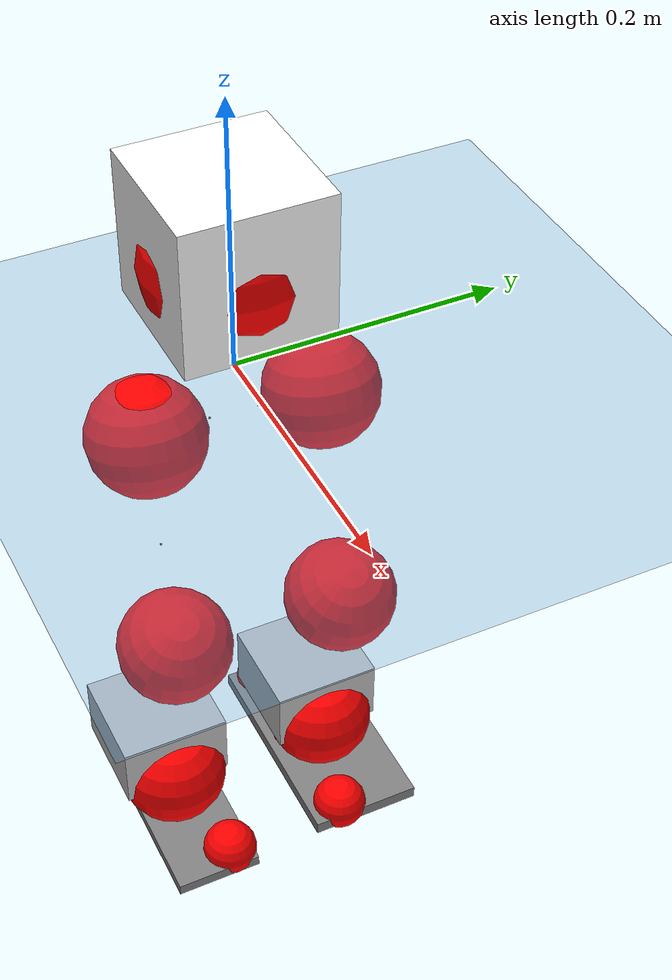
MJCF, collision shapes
<mujoco model="pi_12dof_release_v1">
  <compiler angle="radian" assetdir="assets" balanceinertia="true" inertiafromgeom="false"/>

  <option timestep="0.005" density="1.2" viscosity="2e-05"/>

  <size nkey="1"/>

  <visual>
    <quality shadowsize="8192"/>
    <map shadowclip="0.5"/>
  </visual>

  <default>
    <default class="/">
      <joint armature="0.01" damping="0.01" frictionloss="0.01"/>
      <geom contype="0" conaffinity="0" group="1" solref="-1000 -80"/>
      <site size="0.01 0.005 0.005" group="5"/>
      <general forcelimited="true" biastype="affine" gainprm="20" biasprm="0 -20 -0.5"/>
      <default class="foot">
        <geom size="0.0845 0.036 0.005" type="box" condim="6" group="4" priority="1" friction="0.9 0.2 0.2" solimp="0.015 1 0.005"/>
      </default>
      <default class="reward_collision_sphere">
        <geom group="5" rgba="1 0 0 1"/>
      </default>
    </default>
  </default>

  <asset>
    <texture type="skybox" colorspace="auto" name="//unnamed_texture_0" builtin="gradient" rgb1="0.95 0.95 0.95" rgb2="0.95 0.95 0.95" width="100" height="600"/>
    <texture type="2d" colorspace="auto" name="texplane" builtin="checker" rgb1="0.345 0.575 0.748" rgb2="0.345 0.575 0.748" markrgb="1 1 1" width="512" height="512"/>
    <material name="MatPlane" class="/" texture="texplane" texuniform="true" texrepeat="2 2" specular="0.9"/>
    <mesh name="baselink_1" class="/" file="baselink_1.STL"/>
    <mesh name="r_hip_pitch_link" class="/" file="r_hip_pitch_link.STL"/>
    <mesh name="r_hip_roll_link" class="/" file="r_hip_roll_link.STL"/>
    <mesh name="r_thigh_link" class="/" file="r_thigh_link.STL"/>
    <mesh name="r_calf_link" class="/" file="r_calf_link.STL"/>
    <mesh name="r_ankle_pitch_link" class="/" file="r_ankle_pitch_link.STL"/>
    <mesh name="r_ankle_roll_link" class="/" file="r_ankle_roll_link.STL"/>
    <mesh name="l_hip_pitch_link" class="/" file="l_hip_pitch_link.STL"/>
    <mesh name="l_hip_roll_link" class="/" file="l_hip_roll_link.STL"/>
    <mesh name="l_thigh_link" class="/" file="l_thigh_link.STL"/>
    <mesh name="l_calf_link" class="/" file="l_calf_link.STL"/>
    <mesh name="l_ankle_pitch_link" class="/" file="l_ankle_pitch_link.STL"/>
    <mesh name="l_ankle_roll_link" class="/" file="l_ankle_roll_link.STL"/>
  </asset>

  <worldbody>
    <geom name="floor" class="/" size="100 100 0.125" type="plane" group="0" material="MatPlane"/>
    <light name="toplight_shadow" class="/" pos="0 0 5" dir="0.0990148 0.0990148 -0.990148" type="directional" ambient="0.04 0.04 0.04" diffuse="0.55 0.55 0.55" specular="0.12 0.12 0.12"/>
    <light name="toplight_fill" class="/" pos="0 0 5" dir="0.0990148 0.0990148 -0.990148" type="directional" castshadow="false" ambient="0.04 0.04 0.04" diffuse="0.3 0.3 0.3" specular="0.08 0.08 0.08"/>
    <body name="trunk" pos="0.000329193 -0.00253485 -0.000177173" quat="1 -1.00495e-05 1.79963e-07 8.86554e-06">
      <inertial pos="0.00214747 -0.00313609 0.0490695" quat="0.692556 0.0156567 -2.84029e-05 0.721194" mass="2.55508" diaginertia="0.0169496 0.00401763 0.0109897"/>
      <joint name="//unnamed_joint_0" type="free"/>
      <geom name="//unnamed_geom_1" class="/" type="mesh" density="0" rgba="1 1 1 1" mesh="baselink_1"/>
      <geom name="//unnamed_geom_2" class="/" size="0.0531527 0.0531527 0.0531527" pos="0 0 0.0972331" type="box" rgba="1 1 1 1"/>
      <geom name="//unnamed_geom_3" class="reward_collision_sphere" size="0.058468" pos="0 0 0.0850789"/>
      <site name="imu" class="/" pos="0.0122332 0.00712813 -0.0126459" size="0.0106305"/>
      <camera name="track" class="/" pos="0 -1.70835 0" quat="0.707107 0.707107 0 0" mode="trackcom"/>
      <camera name="ego_camera" class="/" pos="0.083968 0 0.218774" quat="-0.5 -0.5 0.5 0.5"/>
      <body name="r_hip_pitch_link" pos="0.00128812 -0.0171261 -0.0375681" quat="0.992156 -0.000859898 -0.124997 -0.000822139">
        <inertial pos="0.00132202 -0.0474305 0.00148022" quat="-0.0196426 0.706572 -0.0300438 0.706731" mass="0.42774" diaginertia="0.00019065 4.26279e-05 0.000220702"/>
        <joint name="r_hip_pitch_joint" class="/" pos="0 0 0" axis="0.00249711 -0.999987 -0.00440788" range="-1.7562 1.22199" armature="0.010876" damping="0.0125731" frictionloss="0.0111499"/>
        <geom name="//unnamed_geom_4" class="/" type="mesh" density="0" rgba="0.75294 0.75294 0.75294 1" mesh="r_hip_pitch_link"/>
        <geom name="//unnamed_geom_5" class="/" size="0.000531527 0.000531527 0.000531527" type="box" rgba="0.75294 0.75294 0.75294 1"/>
        <body name="r_hip_roll_link" pos="-0.00149131 -0.0455219 -0.00049631" quat="0.999999 0.000684879 0.000696743 0.00069649">
          <inertial pos="0.00113261 0.00156509 -0.0751313" quat="0.700059 -0.0695298 -0.0872356 0.705317" mass="0.466288" diaginertia="0.000588764 0.000127464 0.000345268"/>
          <joint name="r_hip_roll_joint" class="/" pos="0 0 0" axis="-0.999958 0.00686183 0.00612441" range="-0.127556 0.550119" armature="0.00946321" damping="0.0124998" frictionloss="0.0105163"/>
          <geom name="//unnamed_geom_6" class="/" type="mesh" density="0" rgba="0.75294 0.75294 0.75294 1" mesh="r_hip_roll_link"/>
          <geom name="//unnamed_geom_7" class="/" size="0.000531527 0.000531527 0.000531527" type="box" rgba="0.75294 0.75294 0.75294 1"/>
          <geom name="//unnamed_geom_8" class="reward_collision_sphere" size="0.0425222"/>
          <body name="r_thigh_link" pos="-0.000944766 -0.00223314 -0.0843445" quat="1 -0.000769095 7.34758e-05 -7.29661e-05">
            <inertial pos="0.00265876 0.000669526 -0.0602503" quat="0.737408 0.675446 0.00166436 -8.75811e-05" mass="0.135992" diaginertia="0.000212187 4.43255e-05 0.000147968"/>
            <joint name="r_thigh_joint" class="/" pos="0 0 0" axis="0.00213359 -0.00425461 -0.999989" range="-0.345784 0.59542" armature="0.010474" damping="0.00502389" frictionloss="0.0106681"/>
            <geom name="//unnamed_geom_9" class="/" type="mesh" density="0" rgba="0.75294 0.75294 0.75294 1" mesh="r_thigh_link"/>
            <geom name="//unnamed_geom_10" class="/" size="0.000531527 0.000531527 0.000531527" type="box" rgba="0.75294 0.75294 0.75294 1"/>
            <body name="r_calf_link" pos="-0.0017278 -0.00180215 -0.085818" quat="0.947625 0.00018453 0.319384 -7.83945e-05">
              <inertial pos="-0.000604105 -0.00182596 -0.0858427" quat="0.999983 -0.00383812 0.001397 0.00425683" mass="0.942918" diaginertia="0.00623632 0.00154252 0.000477567"/>
              <joint name="r_calf_joint" class="/" pos="0 0 0" axis="0.00712612 -0.999974 -0.000541094" range="-1.60303 0.670738" armature="0.0111406" damping="0.00874084" frictionloss="0.011123"/>
              <geom name="//unnamed_geom_11" class="/" type="mesh" density="0" rgba="0.75294 0.75294 0.75294 1" mesh="r_calf_link"/>
              <geom name="//unnamed_geom_12" class="/" size="0.000531527 0.000531527 0.000531527" type="box" rgba="0.75294 0.75294 0.75294 1"/>
              <geom name="//unnamed_geom_13" class="reward_collision_sphere" size="0.0425222"/>
              <body name="r_ankle_pitch_link" pos="0.00332908 0.00275165 -0.168776" quat="0.980084 -0.000115388 -0.198582 0.000200872">
                <inertial pos="0.00427904 0.000601397 -0.000149766" quat="-0.0040118 0.709962 -0.00588316 0.704204" mass="0.224632" diaginertia="0.000559242 0.000104036 0.000328447"/>
                <joint name="r_ankle_pitch_joint" class="/" pos="0 0 0" axis="0.00405175 -0.999899 -0.0135968" range="-1.28106 0.555371" armature="0.0108203" damping="0.019096" frictionloss="0.0107092"/>
                <geom name="//unnamed_geom_14" class="/" type="mesh" density="0" rgba="0.75294 0.75294 0.75294 1" mesh="r_ankle_pitch_link"/>
                <geom name="//unnamed_geom_15" class="/" size="0.0414591 0.0425222 0.0265763" type="box" rgba="0.75294 0.75294 0.75294 1"/>
                <body name="r_ankle_roll_link" pos="0.0829699 0.00137 -0.00177172" quat="0.999999 -0.000359754 0.00132972 -0.000149143">
                  <inertial pos="-0.0265101 4.7221e-05 -0.0155169" quat="0.565624 0.431877 0.433783 0.552615" mass="0.622003" diaginertia="0.00196405 0.000467798 0.000745966"/>
                  <joint name="r_ankle_roll_joint" class="/" pos="0 0 0" axis="-0.999998 -0.0017978 -0.000760372" range="-0.202172 0.152754" armature="0.0104486" damping="0.009978" frictionloss="0.0100754"/>
                  <geom name="//unnamed_geom_16" class="/" type="mesh" density="0" rgba="0.75294 0.75294 0.75294 1" mesh="r_ankle_roll_link"/>
                  <geom name="//unnamed_geom_17" class="/" type="mesh" rgba="0.75294 0.75294 0.75294 1" mesh="r_ankle_roll_link"/>
                  <geom name="right_foot" class="foot" size="0.0924923 0.0335099 0.00468865" pos="-0.0570982 0 -0.0534782"/>
                  <geom name="//unnamed_geom_19" class="reward_collision_sphere" size="0.0425222" pos="-0.0559786 0 -0.0243083"/>
                  <geom name="//unnamed_geom_20" class="reward_collision_sphere" size="0.0212611" pos="0.0167936 0.0170835 -0.0486165"/>
                  <geom name="//unnamed_geom_21" class="reward_collision_sphere" size="0.0212611" pos="-0.134349 0.0170835 -0.0486165"/>
                  <site name="right_foot" class="foot" pos="-0.0570982 0 -0.0534782" size="0.0106305"/>
                </body>
              </body>
            </body>
          </body>
        </body>
      </body>
      <body name="l_hip_pitch_link" pos="0.000264138 0.0195711 -0.0401964" quat="0.992191 9.90072e-05 -0.124724 -0.000168002">
        <inertial pos="0.00120845 0.0433944 0.000584261" quat="-0.0354221 0.707043 0.0296844 0.705659" mass="0.465561" diaginertia="0.000225971 4.80236e-05 0.000268889"/>
        <joint name="l_hip_pitch_joint" class="/" pos="0 0 0" axis="-0.000795654 1 -0.000418275" stiffness="0.00960212" range="-1.25369 1.75146" armature="0.010331" damping="0" frictionloss="0.0117308"/>
        <geom name="//unnamed_geom_22" class="/" type="mesh" density="0" rgba="0.75294 0.75294 0.75294 1" mesh="l_hip_pitch_link"/>
        <geom name="//unnamed_geom_23" class="/" size="0.000531527 0.000531527 0.000531527" type="box" rgba="0.75294 0.75294 0.75294 1"/>
        <body name="l_hip_roll_link" pos="-0.00128047 0.0481602 -0.0024077" quat="1 -9.86909e-05 0.000151075 -0.000199751">
          <inertial pos="-0.00254469 0.000219479 -0.0767569" quat="0.698995 -0.0695447 -0.0829956 0.706881" mass="0.480248" diaginertia="0.000591912 0.000126486 0.000341152"/>
          <joint name="l_hip_roll_joint" class="/" pos="0 0 0" axis="-0.999941 0.00778383 0.00761713" stiffness="0.000720253" range="-0.555159 0.12481" armature="0.0120233" damping="0.00219713" frictionloss="0.0105741"/>
          <geom name="//unnamed_geom_24" class="/" type="mesh" density="0" rgba="0.75294 0.75294 0.75294 1" mesh="l_hip_roll_link"/>
          <geom name="//unnamed_geom_25" class="/" size="0.000531527 0.000531527 0.000531527" type="box" rgba="0.75294 0.75294 0.75294 1"/>
          <geom name="//unnamed_geom_26" class="reward_collision_sphere" size="0.0425222"/>
          <body name="l_thigh_link" pos="-0.00170406 -0.00274942 -0.0837643" quat="1 -0.000336892 -8.961e-05 -0.000253109">
            <inertial pos="-4.30375e-05 -0.00112952 -0.0565413" quat="0.676546 0.7364 -0.000484161 -0.00106992" mass="0.141197" diaginertia="0.0002321 4.37331e-05 0.000157147"/>
            <joint name="l_thigh_joint" class="/" pos="0 0 0" axis="-7.04638e-05 0.000576625 -1" range="-0.6157 0.298022" armature="0.00962751" damping="0.00929762" frictionloss="0.0106009"/>
            <geom name="//unnamed_geom_27" class="/" type="mesh" density="0" rgba="0.75294 0.75294 0.75294 1" mesh="l_thigh_link"/>
            <geom name="//unnamed_geom_28" class="/" size="0.000531527 0.000531527 0.000531527" type="box" rgba="0.75294 0.75294 0.75294 1"/>
            <body name="l_calf_link" pos="0.000534358 -2.9072e-05 -0.0864625" quat="0.94726 -0.000351592 0.320465 0.000386358">
              <inertial pos="-0.000321557 0.00538879 -0.0874588" quat="0.999972 0.00667337 0.00235899 0.00238971" mass="1.0014" diaginertia="0.00650042 0.00161817 0.000487557"/>
              <joint name="l_calf_joint" class="/" pos="0 0 0" axis="0.00566728 0.999938 0.00961972" range="-0.670761 1.65153" armature="0.0102573" damping="0.00400657" frictionloss="0.0104704"/>
              <geom name="//unnamed_geom_29" class="/" type="mesh" density="0" rgba="0.75294 0.75294 0.75294 1" mesh="l_calf_link"/>
              <geom name="//unnamed_geom_30" class="/" size="0.000531527 0.000531527 0.000531527" type="box" rgba="0.75294 0.75294 0.75294 1"/>
              <geom name="//unnamed_geom_31" class="reward_collision_sphere" size="0.0425222"/>
              <body name="l_ankle_pitch_link" pos="-0.000164762 0.00374994 -0.170058" quat="0.9798 0.000121771 -0.199979 0.000355458">
                <inertial pos="0.00514921 -0.00356959 0.00130949" quat="-0.00506611 0.710199 0.00314268 0.703975" mass="0.20823" diaginertia="0.000529474 9.94819e-05 0.000310914"/>
                <joint name="l_ankle_pitch_joint" class="/" pos="0 0 0" axis="0.00200685 0.999993 0.0030536" range="-0.5597 1.34403" armature="0.0104154" damping="0.0030074" frictionloss="0.0105792"/>
                <geom name="//unnamed_geom_32" class="/" type="mesh" density="0" rgba="0.75294 0.75294 0.75294 1" mesh="l_ankle_pitch_link"/>
                <geom name="//unnamed_geom_33" class="/" size="0.0414591 0.0425222 0.0265763" type="box" rgba="0.75294 0.75294 0.75294 1"/>
                <body name="l_ankle_roll_link" pos="0.0821318 0.000382807 0.00158457" quat="1 -0.000272568 -0.000123598 -0.000266875">
                  <inertial pos="-0.0244898 -0.000520307 -0.0171284" quat="0.559929 0.430794 0.434099 0.558976" mass="0.622684" diaginertia="0.0020636 0.000474186 0.000742814"/>
                  <joint name="l_ankle_roll_joint" class="/" pos="0 0 0" axis="-0.999919 0.00487418 0.0117803" range="-0.10103 0.104574" armature="0.0120013" damping="0.0244125" frictionloss="0.00917874"/>
                  <geom name="//unnamed_geom_34" class="/" type="mesh" density="0" rgba="0.75294 0.75294 0.75294 1" mesh="l_ankle_roll_link"/>
                  <geom name="//unnamed_geom_35" class="/" type="mesh" rgba="0.75294 0.75294 0.75294 1" mesh="l_ankle_roll_link"/>
                  <geom name="left_foot" class="foot" size="0.0883956 0.0436321 0.00524359" pos="-0.0570982 0 -0.0534782"/>
                  <geom name="//unnamed_geom_37" class="reward_collision_sphere" size="0.0425222" pos="-0.0559786 0 -0.0243083"/>
                  <geom name="//unnamed_geom_38" class="reward_collision_sphere" size="0.0212611" pos="0.0167936 -0.0170835 -0.0486165"/>
                  <geom name="//unnamed_geom_39" class="reward_collision_sphere" size="0.0212611" pos="-0.134349 -0.0170835 -0.0486165"/>
                  <site name="left_foot" class="foot" pos="-0.0570982 0 -0.0534782" size="0.0106305"/>
                </body>
              </body>
            </body>
          </body>
        </body>
      </body>
    </body>
  </worldbody>

  <contact>
    <pair class="/" geom1="floor" geom2="right_foot" name="//unnamed_contact_1"/>
    <pair class="/" geom1="floor" geom2="left_foot" name="//unnamed_contact_0"/>
  </contact>

  <actuator>
    <general name="r_hip_pitch_joint" class="/" joint="r_hip_pitch_joint" forcerange="-23.1116 23.1116" gainprm="20.4677" biasprm="0 -20.4677 -0.542006"/>
    <general name="r_hip_roll_joint" class="/" joint="r_hip_roll_joint" forcerange="-22.4251 22.4251" gainprm="20.4677" biasprm="0 -20.4677 -0.542006"/>
    <general name="r_thigh_joint" class="/" joint="r_thigh_joint" forcerange="-24.1745 24.1745" gainprm="20.4677" biasprm="0 -20.4677 -0.542006"/>
    <general name="r_calf_joint" class="/" joint="r_calf_joint" forcerange="-19.9895 19.9895" gainprm="20.4677" biasprm="0 -20.4677 -0.542006"/>
    <general name="r_ankle_pitch_joint" class="/" joint="r_ankle_pitch_joint" forcerange="-24.5959 24.5959" gainprm="20.4677" biasprm="0 -20.4677 -0.542006"/>
    <general name="r_ankle_roll_joint" class="/" joint="r_ankle_roll_joint" forcerange="-24.6002 24.6002" gainprm="20.4677" biasprm="0 -20.4677 -0.542006"/>
    <general name="l_hip_pitch_joint" class="/" joint="l_hip_pitch_joint" forcerange="-24.3464 24.3464" gainprm="20.4677" biasprm="0 -20.4677 -0.542006"/>
    <general name="l_hip_roll_joint" class="/" joint="l_hip_roll_joint" forcerange="-20.6023 20.6023" gainprm="20.4677" biasprm="0 -20.4677 -0.542006"/>
    <general name="l_thigh_joint" class="/" joint="l_thigh_joint" forcerange="-22.849 22.849" gainprm="20.4677" biasprm="0 -20.4677 -0.542006"/>
    <general name="l_calf_joint" class="/" joint="l_calf_joint" forcerange="-24.5863 24.5863" gainprm="20.4677" biasprm="0 -20.4677 -0.542006"/>
    <general name="l_ankle_pitch_joint" class="/" joint="l_ankle_pitch_joint" forcerange="-24.5838 24.5838" gainprm="20.4677" biasprm="0 -20.4677 -0.542006"/>
    <general name="l_ankle_roll_joint" class="/" joint="l_ankle_roll_joint" forcerange="-23.9899 23.9899" gainprm="20.4677" biasprm="0 -20.4677 -0.542006"/>
  </actuator>

  <sensor>
    <gyro site="imu" name="imu_angular_velocity"/>
    <velocimeter site="imu" name="imu_linear_velocity"/>
    <framelinvel objtype="site" objname="left_foot" name="left_foot_global_linear_velocity"/>
    <framelinvel objtype="site" objname="right_foot" name="right_foot_global_linear_velocity"/>
  </sensor>

  <keyframe>
    <key name="home" qpos="0 0 0.291 1 0 0 0 0.4 0 0 -0.8 0.4 0 -0.4 0 0 0.8 -0.4 0"/>
  </keyframe>
</mujoco>
